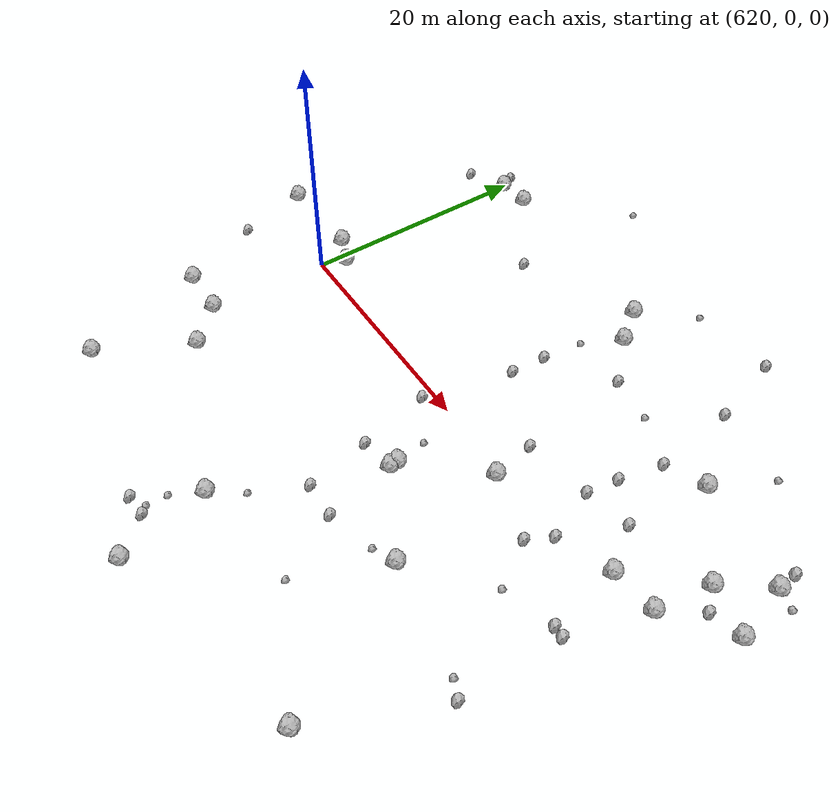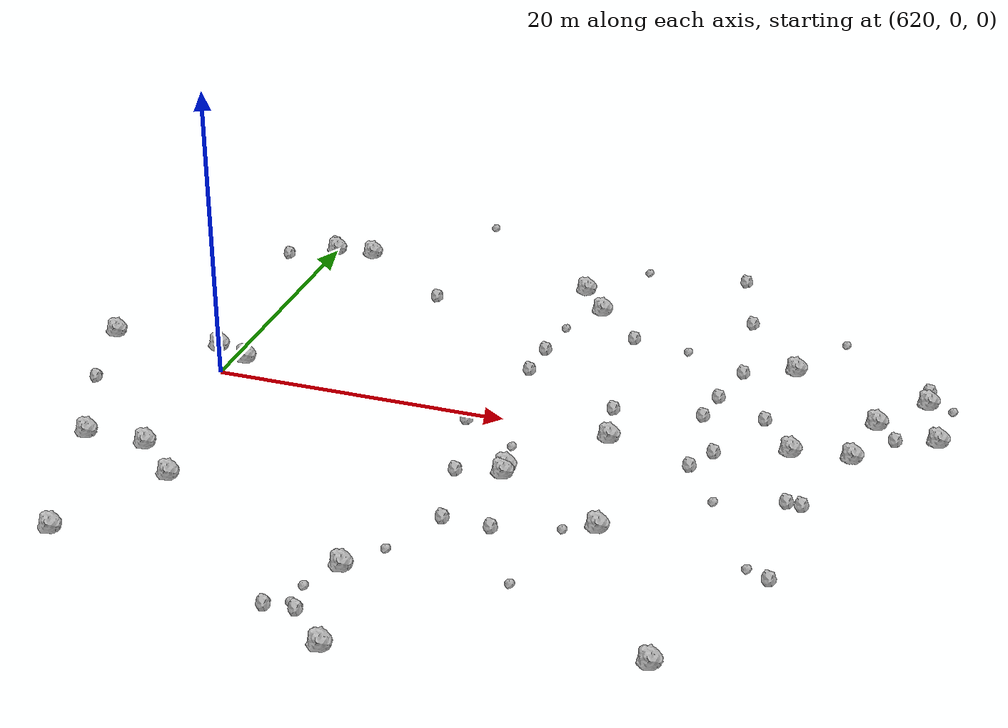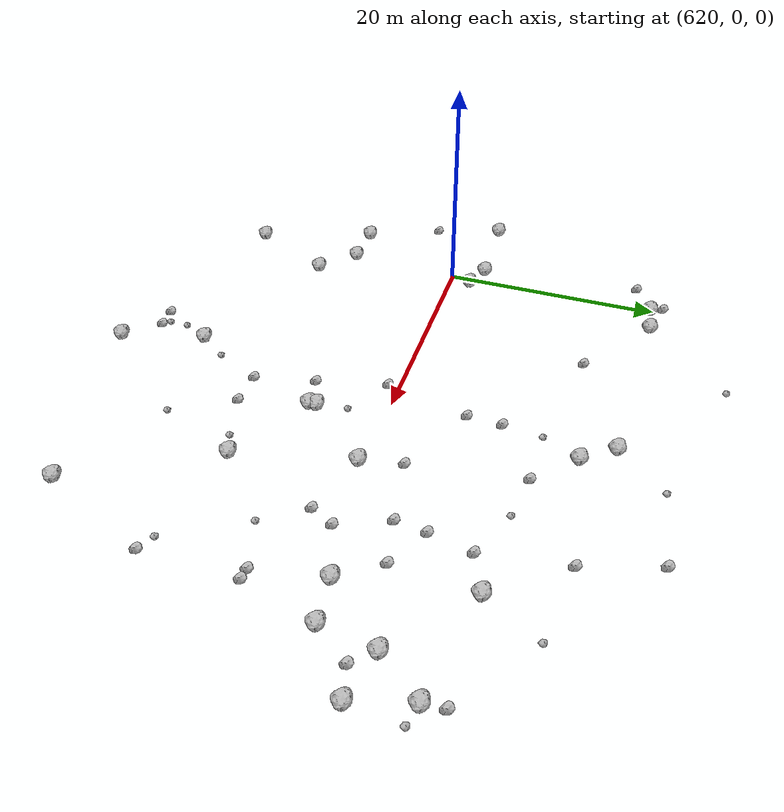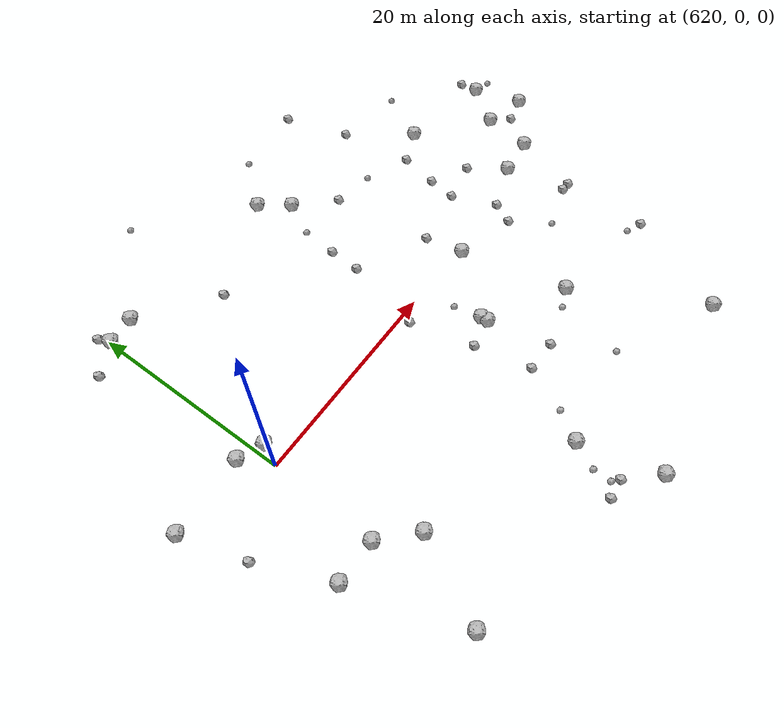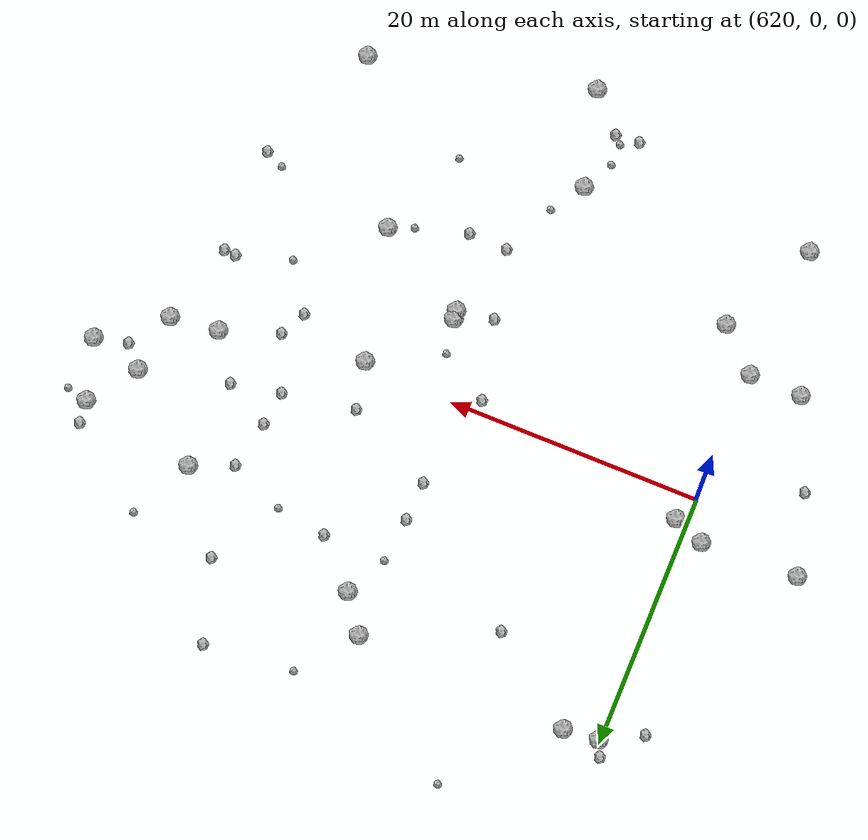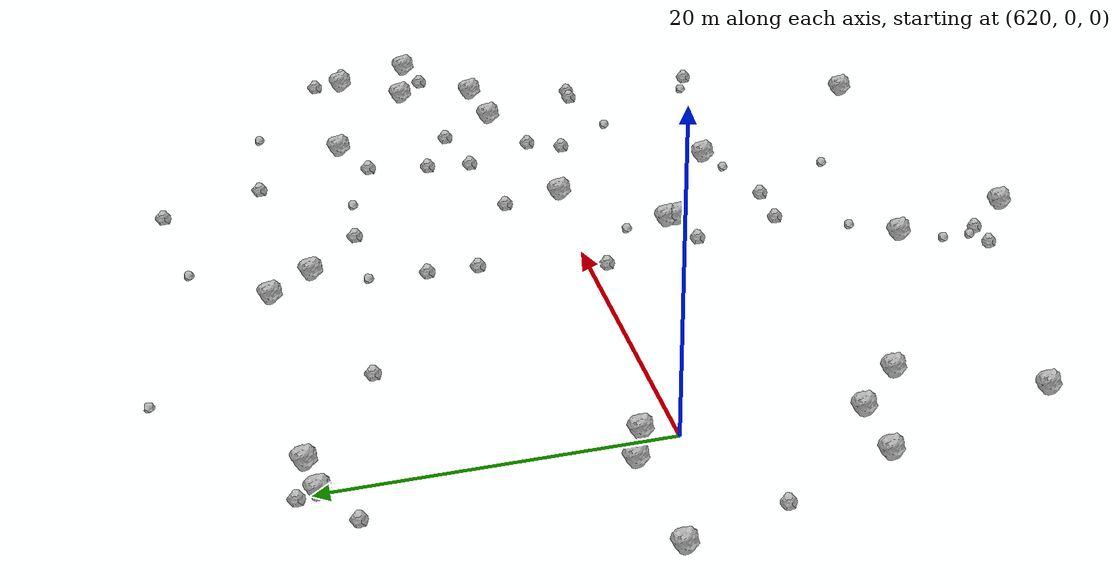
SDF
<sdf version="1.6">
 <world name="default">
  <include><uri>model://sun</uri></include>
  <model name="rock1_16_3">
   <include><uri>model://rock1</uri><pose>618.4855036146882 2.9472696330485206 0.5 0 0 0</pose></include>
  </model>
  <model name="rock1_16_4">
   <include><uri>model://rock1</uri><pose>610.8455980720731 2.642870410891355 0.5 0 0 0</pose></include>
  </model>
  <model name="rock1_16_5">
   <include><uri>model://rock1</uri><pose>636.8133549531746 -19.330206407457567 0.5 0 0 0</pose></include>
  </model>
  <model name="rock1_16_6">
   <include><uri>model://rock1</uri><pose>647.2323330619431 -0.4589648946884566 0.5 0 0 0</pose></include>
  </model>
  <model name="rock1_16_7">
   <include><uri>model://rock1</uri><pose>620.9200584265601 1.9732287457532607 0.5 0 0 0</pose></include>
  </model>
  <model name="rock1_16_8">
   <include><uri>model://rock1</uri><pose>622.9343098237841 19.95106682150101 0.5 0 0 0</pose></include>
  </model>
  <model name="rock1_16_9">
   <include><uri>model://rock1</uri><pose>618.9743950451787 -21.056890016700706 0.5 0 0 0</pose></include>
  </model>
  <model name="rock1_16_10">
   <include><uri>model://rock1</uri><pose>649.560074945388 -10.736122601329125 0.5 0 0 0</pose></include>
  </model>
  <model name="rock1_16_11">
   <include><uri>model://rock1</uri><pose>658.4917248719695 1.5051577622975785 0.5 0 0 0</pose></include>
  </model>
  <model name="rock1_16_12">
   <include><uri>model://rock1</uri><pose>622.8241063193885 -13.393256650634942 0.5 0 0 0</pose></include>
  </model>
  <model name="rock1_16_13">
   <include><uri>model://rock1</uri><pose>662.3044284339238 1.911202787953684 0.5 0 0 0</pose></include>
  </model>
  <model name="rock1_16_14">
   <include><uri>model://rock1</uri><pose>641.7884973295745 16.37293322903801 0.5 0 0 0</pose></include>
  </model>
  <model name="rock1_16_15">
   <include><uri>model://rock1</uri><pose>615.5740247348525 -10.371342074113457 0.5 0 0 0</pose></include>
  </model>
  <model name="rock1_16_16">
   <include><uri>model://rock1</uri><pose>663.0073303479213 6.586337263073702 0.5 0 0 0</pose></include>
  </model>
  <model name="rock1_16_17">
   <include><uri>model://rock1</uri><pose>667.0772610960787 5.565471324112991 0.5 0 0 0</pose></include>
  </model>
  <model name="rock1_16_18">
   <include><uri>model://rock1</uri><pose>642.2651393511455 -6.696418577175695 0.5 0 0 0</pose></include>
  </model>
  <model name="rock1_16_19">
   <include><uri>model://rock1</uri><pose>639.7749706886025 19.137788967426772 0.5 0 0 0</pose></include>
  </model>
  <model name="rock1_16_20">
   <include><uri>model://rock1</uri><pose>665.7282619026753 10.247388333607184 0.5 0 0 0</pose></include>
  </model>
  <model name="rock1_16_21">
   <include><uri>model://rock1</uri><pose>656.6203932699611 11.994077642455466 0.5 0 0 0</pose></include>
  </model>
  <model name="rock1_16_22">
   <include><uri>model://rock1</uri><pose>642.2211272379619 -6.0338289114102395 0.5 0 0 0</pose></include>
  </model>
  <model name="rock1_16_23">
   <include><uri>model://rock1</uri><pose>620.1696143203945 19.694913583396186 0.5 0 0 0</pose></include>
  </model>
  <model name="rock1_16_24">
   <include><uri>model://rock1</uri><pose>638.7110531901269 -26.863253160888 0.5 0 0 0</pose></include>
  </model>
  <model name="rock1_16_25">
   <include><uri>model://rock1</uri><pose>619.732960015631 -10.43458740895786 0.5 0 0 0</pose></include>
  </model>
  <model name="rock1_16_26">
   <include><uri>model://rock1</uri><pose>656.1020408868812 -22.724745201488453 0.5 0 0 0</pose></include>
  </model>
  <model name="rock2_16_0">
   <include><uri>model://rock2</uri><pose>660.3696067786502 -12.841985338805546 0.3 0 0 0</pose></include>
  </model>
  <model name="rock2_16_1">
   <include><uri>model://rock2</uri><pose>652.1869983444858 4.193364473839182 0.3 0 0 0</pose></include>
  </model>
  <model name="rock2_16_2">
   <include><uri>model://rock2</uri><pose>652.5481073903655 6.9003486907656395 0.3 0 0 0</pose></include>
  </model>
  <model name="rock2_16_3">
   <include><uri>model://rock2</uri><pose>665.5193597479225 12.02858932154421 0.3 0 0 0</pose></include>
  </model>
  <model name="rock2_16_4">
   <include><uri>model://rock2</uri><pose>652.3000470670592 17.838130384089574 0.3 0 0 0</pose></include>
  </model>
  <model name="rock2_16_5">
   <include><uri>model://rock2</uri><pose>652.926080346656 -2.120391200456247 0.3 0 0 0</pose></include>
  </model>
  <model name="rock2_16_6">
   <include><uri>model://rock2</uri><pose>637.8717092285029 -0.9812138196175972 0.3 0 0 0</pose></include>
  </model>
  <model name="rock2_16_7">
   <include><uri>model://rock2</uri><pose>636.078925790521 -24.067198800210143 0.3 0 0 0</pose></include>
  </model>
  <model name="rock2_16_8">
   <include><uri>model://rock2</uri><pose>653.3172914743624 10.645121590838599 0.3 0 0 0</pose></include>
  </model>
  <model name="rock2_16_9">
   <include><uri>model://rock2</uri><pose>659.5369425131574 -4.412962046422521 0.3 0 0 0</pose></include>
  </model>
  <model name="rock2_16_10">
   <include><uri>model://rock2</uri><pose>629.939356213797 14.860696059580306 0.3 0 0 0</pose></include>
  </model>
  <model name="rock2_16_11">
   <include><uri>model://rock2</uri><pose>639.3470565935393 -7.165125739902422 0.3 0 0 0</pose></include>
  </model>
  <model name="rock2_16_12">
   <include><uri>model://rock2</uri><pose>646.4619339058788 3.2288890947000084 0.3 0 0 0</pose></include>
  </model>
  <model name="rock2_16_13">
   <include><uri>model://rock2</uri><pose>612.5991921981896 -3.535061460771331 0.3 0 0 0</pose></include>
  </model>
  <model name="rock2_16_14">
   <include><uri>model://rock2</uri><pose>653.9527605217081 -0.08222173274819511 0.3 0 0 0</pose></include>
  </model>
  <model name="rock2_16_15">
   <include><uri>model://rock2</uri><pose>639.6286088063919 6.573191913689016 0.3 0 0 0</pose></include>
  </model>
  <model name="rock2_16_16">
   <include><uri>model://rock2</uri><pose>643.5812619295382 -12.670536222104477 0.3 0 0 0</pose></include>
  </model>
  <model name="rock2_16_17">
   <include><uri>model://rock2</uri><pose>617.0371587525582 18.08356448653769 0.3 0 0 0</pose></include>
  </model>
  <model name="rock2_16_18">
   <include><uri>model://rock2</uri><pose>639.7625702675873 9.655030362630917 0.3 0 0 0</pose></include>
  </model>
  <model name="rock2_16_19">
   <include><uri>model://rock2</uri><pose>619.5992344869578 20.88784117269249 0.3 0 0 0</pose></include>
  </model>
  <model name="rock2_16_20">
   <include><uri>model://rock2</uri><pose>645.0765297624633 13.065026907477566 0.3 0 0 0</pose></include>
  </model>
  <model name="rock2_16_21">
   <include><uri>model://rock2</uri><pose>656.0821153913649 4.96090203684868 0.3 0 0 0</pose></include>
  </model>
  <model name="rock2_16_22">
   <include><uri>model://rock2</uri><pose>640.5013554035914 -12.574554138132601 0.3 0 0 0</pose></include>
  </model>
  <model name="rock2_16_23">
   <include><uri>model://rock2</uri><pose>660.4757474718181 -4.482668655200168 0.3 0 0 0</pose></include>
  </model>
  <model name="rock2_16_24">
   <include><uri>model://rock2</uri><pose>650.360133342401 24.143947961841505 0.3 0 0 0</pose></include>
  </model>
  <model name="rock2_16_25">
   <include><uri>model://rock2</uri><pose>664.4586347627259 4.962473382438489 0.3 0 0 0</pose></include>
  </model>
  <model name="rock2_16_26">
   <include><uri>model://rock2</uri><pose>634.1742286810368 -24.19335012762413 0.3 0 0 0</pose></include>
  </model>
  <model name="rock3_16_0">
   <include><uri>model://rock3</uri><pose>655.290249850003 -5.752406433129952 0.2 0 0 0</pose></include>
  </model>
  <model name="rock3_16_1">
   <include><uri>model://rock3</uri><pose>667.3594003770273 9.820923001110998 0.2 0 0 0</pose></include>
  </model>
  <model name="rock3_16_2">
   <include><uri>model://rock3</uri><pose>643.2646475236587 23.426249671927422 0.2 0 0 0</pose></include>
  </model>
  <model name="rock3_16_3">
   <include><uri>model://rock3</uri><pose>635.5069638091536 -21.800004633156433 0.2 0 0 0</pose></include>
  </model>
  <model name="rock3_16_4">
   <include><uri>model://rock3</uri><pose>630.0499181588486 27.259647766338645 0.2 0 0 0</pose></include>
  </model>
  <model name="rock3_16_5">
   <include><uri>model://rock3</uri><pose>658.8889457400156 -12.209141223192056 0.2 0 0 0</pose></include>
  </model>
  <model name="rock3_16_6">
   <include><uri>model://rock3</uri><pose>649.0374943033684 12.415939864263223 0.2 0 0 0</pose></include>
  </model>
  <model name="rock3_16_7">
   <include><uri>model://rock3</uri><pose>641.7051299403096 -3.372513211200612 0.2 0 0 0</pose></include>
  </model>
  <model name="rock3_16_8">
   <include><uri>model://rock3</uri><pose>647.6187928298447 -11.556251630738473 0.2 0 0 0</pose></include>
  </model>
  <model name="rock3_16_9">
   <include><uri>model://rock3</uri><pose>659.0659623790278 16.794985567292436 0.2 0 0 0</pose></include>
  </model>
  <model name="rock3_16_10">
   <include><uri>model://rock3</uri><pose>646.5022252015632 -17.917799092790858 0.2 0 0 0</pose></include>
  </model>
  <model name="rock3_16_11">
   <include><uri>model://rock3</uri><pose>635.4764470623848 -23.52911467858323 0.2 0 0 0</pose></include>
  </model>
  <model name="rock3_16_12">
   <include><uri>model://rock3</uri><pose>640.0954237341815 13.128983639940031 0.2 0 0 0</pose></include>
  </model>
  <model name="rock3_16_13">
   <include><uri>model://rock3</uri><pose>638.514402759771 -16.78653861406125 0.2 0 0 0</pose></include>
  </model>
 </world>
</sdf>
